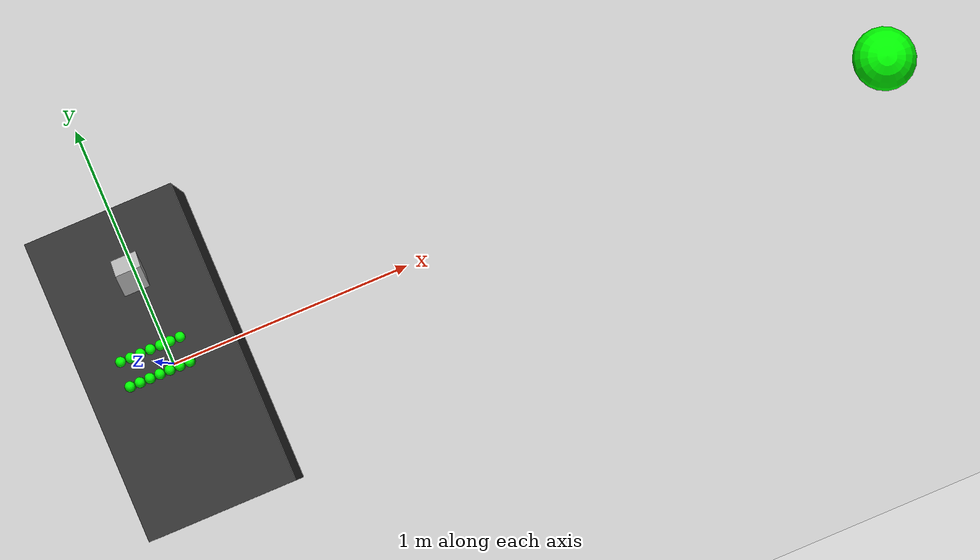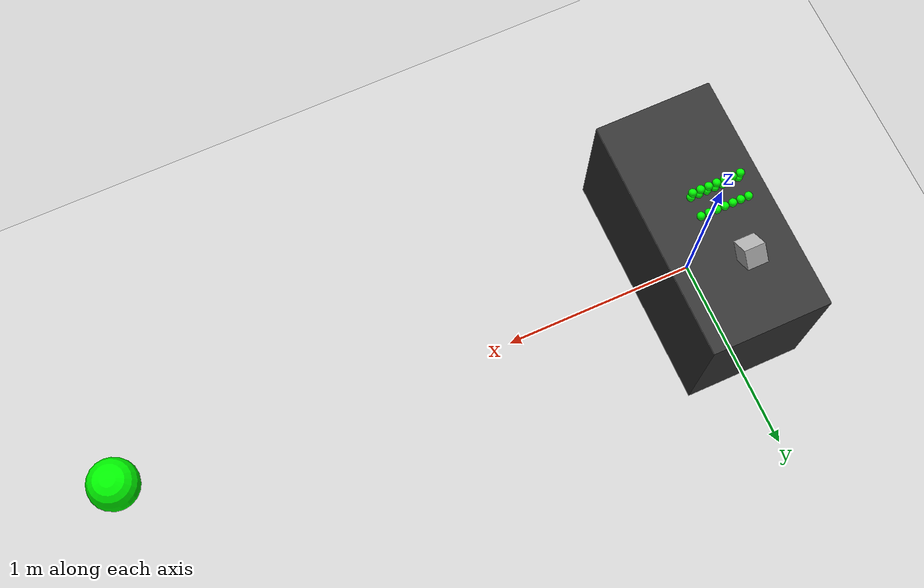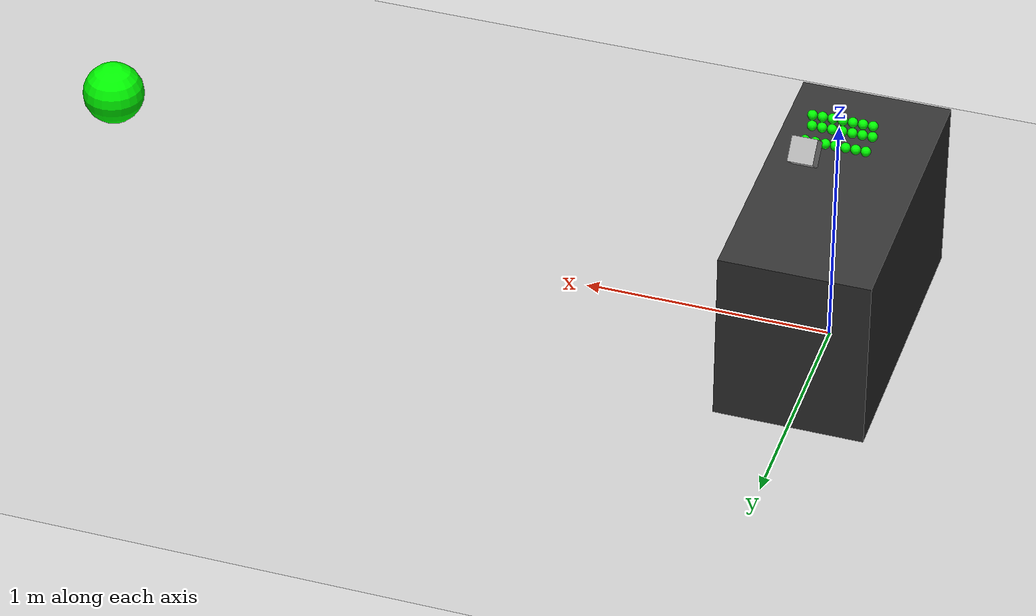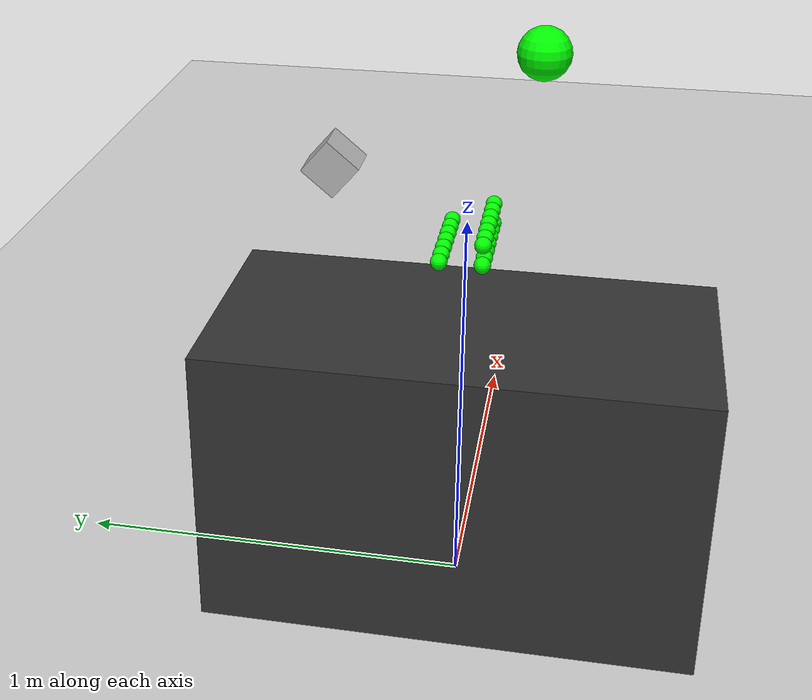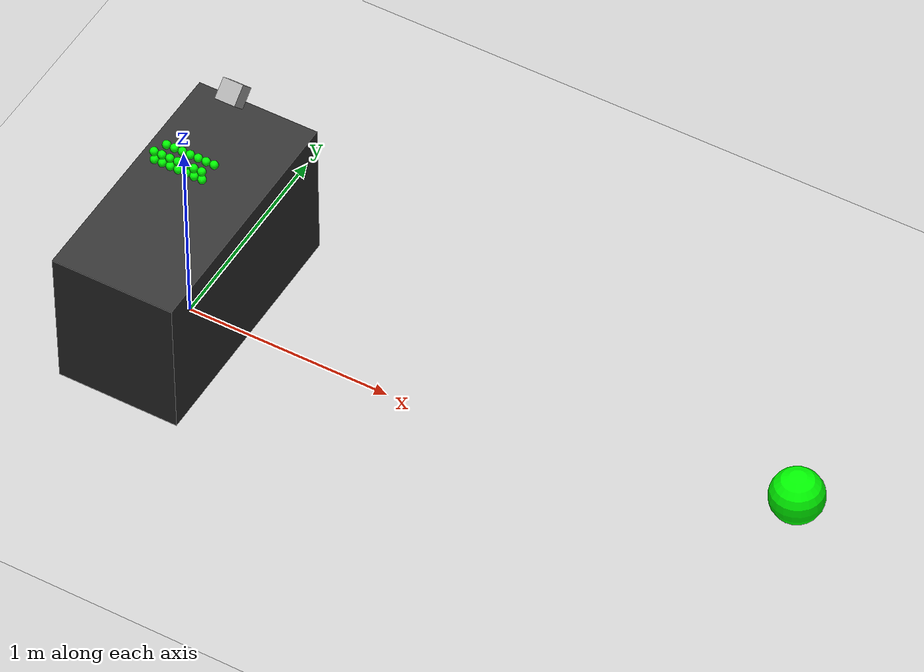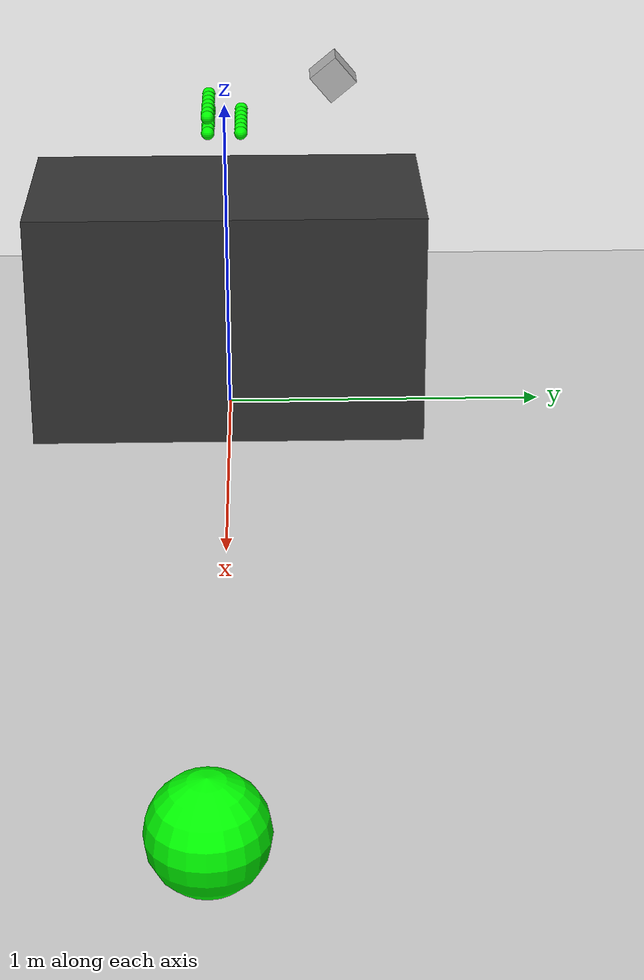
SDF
<sdf version="1.6">
 <world name="pprs_world">
  <physics name="1ms" type="ignored">
   <max_step_size>0.001</max_step_size>
   <real_time_factor>1.0</real_time_factor>
  </physics>
  <plugin filename="gz-sim-physics-system" name="gz::sim::systems::Physics"/>
  <plugin filename="gz-sim-sensors-system" name="gz::sim::systems::Sensors">
   <render_engine>ogre2</render_engine>
  </plugin>
  <plugin filename="gz-sim-user-commands-system" name="gz::sim::systems::UserCommands"/>
  <plugin filename="gz-sim-scene-broadcaster-system" name="gz::sim::systems::SceneBroadcaster"/>
  <scene><ambient>1.0 1.0 1.0</ambient><background>0.8 0.8 0.8</background><grid>true</grid></scene>
  <include><uri>https://fuel.gazebosim.org/1.0/OpenRobotics/models/Ground Plane</uri></include>
  <include><uri>https://fuel.gazebosim.org/1.0/OpenRobotics/models/Sun</uri></include>
  <include><name>robot_table</name><pose>0.0 0.0 0.3683 0 0 0</pose><uri>model://Robot_Table</uri></include>
  <model name="sphere">
   <static>true</static>
   <pose>3 0 0.5 0 0 0</pose>
   <link name="sphere_link">
    <collision name="sphere_collision"><geometry><sphere><radius>0.125</radius></sphere></geometry></collision>
    <visual name="sphere_visual">
     <geometry><sphere><radius>0.125</radius></sphere></geometry>
     <material><ambient>0 1 0 1</ambient><diffuse>0 1 0 1</diffuse><specular>0 1 0 1</specular></material>
     <cast_shadows>false</cast_shadows>
    </visual>
   </link>
  </model>
  <model name="camera">
   <pose>0 0.4 1.1 0 0.7 -1.57</pose>
   <static>true</static>
   <link name="link">
    <pose>0.05 0.05 0.05 0 0 0</pose>
    <inertial>
     <mass>0.1</mass>
     <inertia><ixx>0.000166667</ixx><iyy>0.000166667</iyy><izz>0.000166667</izz></inertia>
    </inertial>
    <collision name="collision"><geometry><box><size>0.1 0.1 0.1</size></box></geometry></collision>
    <visual name="visual"><geometry><box><size>0.1 0.1 0.1</size></box></geometry></visual>
    <sensor name="camera" type="camera">
     <camera>
      <horizontal_fov>1.047</horizontal_fov>
      <image><width>320</width><height>240</height></image>
      <clip><near>0.1</near><far>100</far></clip>
     </camera>
     <always_on>1</always_on>
     <update_rate>30</update_rate>
     <visualize>true</visualize>
     <topic>camera</topic>
    </sensor>
   </link>
  </model>
  <include><name>ball297</name><pose>-0.12 -0.05 1 0 0 0</pose><uri>model://PingPong_Ball</uri></include>
  <include><name>ball298</name><pose>-0.08 -0.05 1 0 0 0</pose><uri>model://PingPong_Ball</uri></include>
  <include><name>ball299</name><pose>-0.04 -0.05 1 0 0 0</pose><uri>model://PingPong_Ball</uri></include>
  <include><name>ball300</name><pose>0.00 -0.05 1 0 0 0</pose><uri>model://PingPong_Ball</uri></include>
  <include><name>ball301</name><pose>0.04 -0.05 1 0 0 0</pose><uri>model://PingPong_Ball</uri></include>
  <include><name>ball302</name><pose>0.08 -0.05 1 0 0 0</pose><uri>model://PingPong_Ball</uri></include>
  <include><name>ball303</name><pose>0.12 -0.05 1 0 0 0</pose><uri>model://PingPong_Ball</uri></include>
  <include><name>ball497</name><pose>-0.12 -0.05 0.95 0 0 0</pose><uri>model://PingPong_Ball</uri></include>
  <include><name>ball498</name><pose>-0.08 -0.05 0.95 0 0 0</pose><uri>model://PingPong_Ball</uri></include>
  <include><name>ball499</name><pose>-0.04 -0.05 0.95 0 0 0</pose><uri>model://PingPong_Ball</uri></include>
  <include><name>ball500</name><pose>0.00 -0.05 0.95 0 0 0</pose><uri>model://PingPong_Ball</uri></include>
  <include><name>ball501</name><pose>0.04 -0.05 0.95 0 0 0</pose><uri>model://PingPong_Ball</uri></include>
  <include><name>ball502</name><pose>0.08 -0.05 0.95 0 0 0</pose><uri>model://PingPong_Ball</uri></include>
  <include><name>ball503</name><pose>0.12 -0.05 0.95 0 0 0</pose><uri>model://PingPong_Ball</uri></include>
  <include><name>ball697</name><pose>-0.12 0.05 0.95 0 0 0</pose><uri>model://PingPong_Ball</uri></include>
  <include><name>ball698</name><pose>-0.08 0.05 0.95 0 0 0</pose><uri>model://PingPong_Ball</uri></include>
  <include><name>ball699</name><pose>-0.04 0.05 0.95 0 0 0</pose><uri>model://PingPong_Ball</uri></include>
  <include><name>ball700</name><pose>0.00 0.05 0.95 0 0 0</pose><uri>model://PingPong_Ball</uri></include>
  <include><name>ball701</name><pose>0.04 0.05 0.95 0 0 0</pose><uri>model://PingPong_Ball</uri></include>
  <include><name>ball702</name><pose>0.08 0.05 0.95 0 0 0</pose><uri>model://PingPong_Ball</uri></include>
  <include><name>ball703</name><pose>0.12 0.05 0.95 0 0 0</pose><uri>model://PingPong_Ball</uri></include>
 </world>
</sdf>

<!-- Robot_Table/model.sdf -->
<sdf version='1.6'>
    <model name='robot_table_box'>
        <pose>0.0 0.0 0.3683 0 0 0</pose>
        <link name='box_link'>
            <inertial>
                <inertia>
                    <ixx>0.16666</ixx>
                    <ixy>0</ixy>
                    <ixz>0</ixz>
                    <iyy>0.16666</iyy>
                    <iyz>0</iyz>
                    <izz>0.16666</izz>
                </inertia>
                <mass>1</mass>
                <pose>0 0 0 0 0 0</pose>
            </inertial>
            <collision name='box_collision'>
                <geometry>
                    <box>
                        <size>0.6 1.2192 0.7366</size>
                    </box>
                </geometry>
                <surface>
                    <friction>
                        <ode />
                    </friction>
                    <bounce />
                    <contact />
                </surface>
            </collision>
            <visual name='box_visual'>
                <geometry>
                    <box>
                        <size>0.6 1.2192 0.7366</size>
                    </box>
                </geometry>
                <material>
                    <ambient>0.2 0.2 0.2 1</ambient>
                    <diffuse>0.2 0.2 0.2 1</diffuse>
                    <specular>0.2 0.2 0.2 1</specular>
                </material>
            </visual>
            <pose>0 0 0 0 0 0</pose>
            <enable_wind>false</enable_wind>
        </link>
        <static>false</static>
        <self_collide>false</self_collide>
    </model>
</sdf>

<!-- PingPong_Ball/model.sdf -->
<sdf version='1.6'>
    <model name="ball6">
        <static>false</static>
        <pose>0 0.07 1.15 0 0 0</pose>
        <link name="sphere_link">
            <inertial>
                <mass>0.01</mass>
                <inertia>
                    <ixx>0.00004</ixx>
                    <iyy>0.00004</iyy>
                    <izz>0.00004</izz>
                    <ixy>0.0</ixy>
                    <ixz>0.0</ixz>
                    <iyz>0.0</iyz>
                </inertia>
            </inertial>
            <collision name="sphere_collision">
                <geometry>
                    <sphere>
                        <radius>0.020</radius>
                    </sphere>
                </geometry>
            </collision>
            <visual name="sphere_visual">
                <geometry>
                    <sphere>
                        <radius>0.020</radius>
                    </sphere>
                </geometry>
                <material>
                    <ambient>0 1 0 1</ambient>
                    <diffuse>0 1 0 1</diffuse>
                    <specular>0 1 0 1</specular>
                </material>
                <cast_shadows>false</cast_shadows>
            </visual>
        </link>
    </model>
</sdf>
